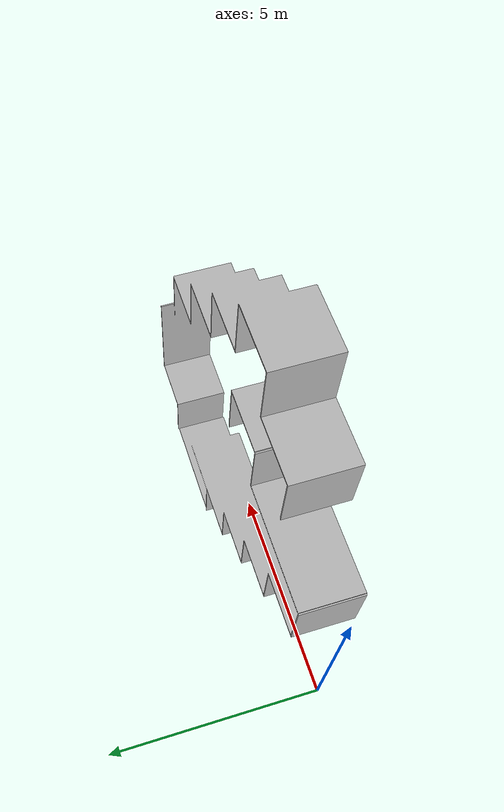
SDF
<?xml version='1.0'?>
<sdf version='1.6'>
  <model name='2022RoboCup_wall'>
    <static>true</static>
    <link name='2022RoboCup_wall'>
      <pose frame=''>0 0 0 0 0 0</pose>
      <inertial>
        <pose frame=''>0 0 0 0 0 0</pose>
        <mass>95.88</mass>
      </inertial>
      <collision name='2022RoboCup_wall_collision'>
        <pose frame=''>0 0 0 0 0 0</pose>
        <geometry>
          <mesh>
            <scale>0.01 0.01 0.01</scale>
            <uri>model://2022RoboCup_wall/meshes/2022RoboCup_wall.STL</uri>
          </mesh>
        </geometry>
        <surface>
            <contact>
              <collide_bitmask>65535</collide_bitmask>
              <ode/>
            </contact>
            <friction>
              <ode>
                <mu>2</mu>
                <mu2>2</mu2>
              </ode>
              <torsional>
                <ode/>
              </torsional>
            </friction>
            <bounce/>
          </surface>
      </collision>
      <visual name='2022RoboCup_wall_visual'>
        <pose frame=''>0 0 0 0 0  0</pose>
        <geometry>
          <mesh>
            <scale>0.01 0.01 0.01</scale>
            <uri>model://2022RoboCup_wall/meshes/2022RoboCup_wall.dae</uri>
          </mesh>
        </geometry>
      </visual>
    </link>
  </model>
</sdf>
